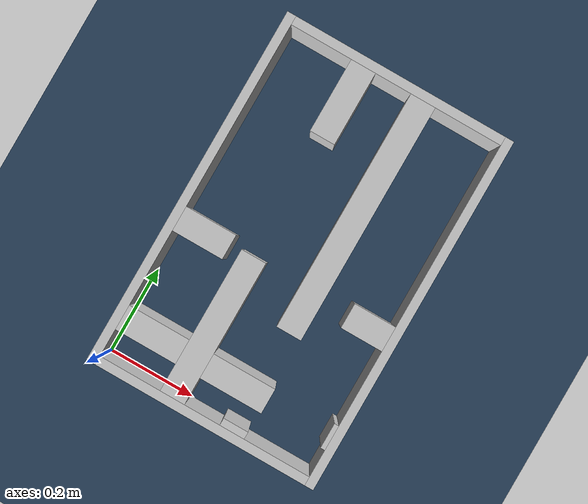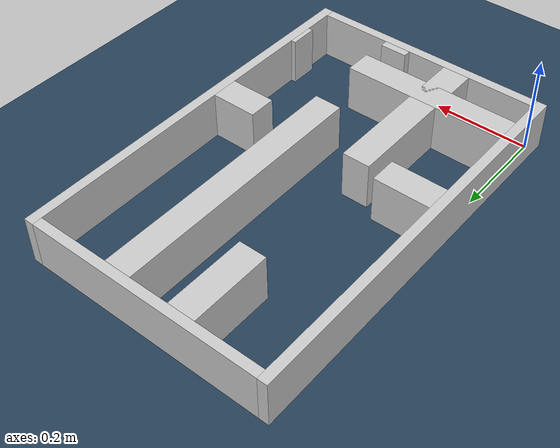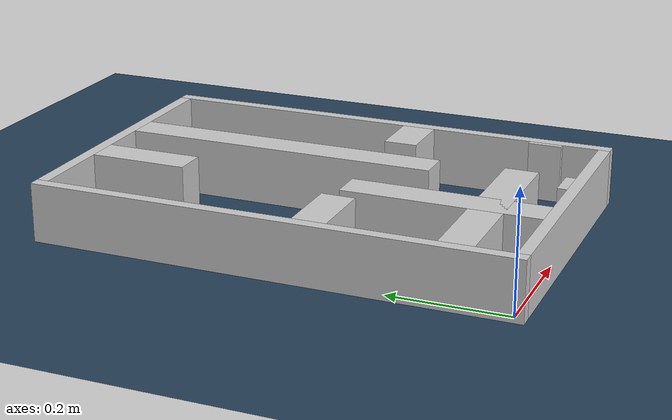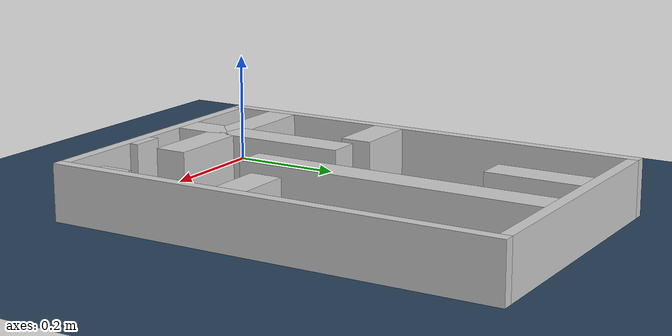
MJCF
<?xml version="1.0" ?>
<mujoco model="generated_real_template">
  <compiler angle="degree"/>
  <option timestep="0.002" integrator="implicitfast" iterations="100" cone="elliptic"/>
  <default>
    <geom density="1"/>
  </default>
  <asset>
    <texture builtin="gradient" height="3072" rgb1="0.3 0.5 0.7" rgb2="0 0 0" type="skybox" width="512"/>
    <texture builtin="checker" height="300" mark="edge" markrgb="0.8 0.8 0.8" name="groundplane" rgb1="0.2 0.3 0.4" rgb2="0.1 0.2 0.3" type="2d" width="300"/>
    <material name="groundplane" reflectance="0.2" texrepeat="5 5" texture="groundplane" texuniform="true"/>
  </asset>
  <worldbody>
    <light dir="0 0 -1" directional="true" pos="0 0 1.5"/>
    <geom name="floor" type="plane" condim="4" friction="0.5 0.005 0.001" material="groundplane" size="0 0 0.05"/>
    <body name="walls">
      <geom name="wall_boundary_left" type="box" condim="4" friction="1.0 0.005 0.0001" rgba="0.8 0.8 0.8 1" pos="-0.010000 0.387500 0.050000" euler="0 0 0.000000" size="0.010000 0.407500 0.050000"/>
      <geom name="wall_boundary_right" type="box" condim="4" friction="1.0 0.005 0.0001" rgba="0.8 0.8 0.8 1" pos="0.500000 0.387500 0.050000" euler="0 0 0.000000" size="0.010000 0.407500 0.050000"/>
      <geom name="wall_boundary_bottom" type="box" condim="4" friction="1.0 0.005 0.0001" rgba="0.8 0.8 0.8 1" pos="0.245000 -0.010000 0.050000" euler="0 0 0.000000" size="0.245000 0.010000 0.050000"/>
      <geom name="wall_boundary_top" type="box" condim="4" friction="1.0 0.005 0.0001" rgba="0.8 0.8 0.8 1" pos="0.245000 0.785000 0.050000" euler="0 0 0.000000" size="0.245000 0.010000 0.050000"/>
      <geom name="wall_inner_1_1" type="box" condim="4" friction="1.0 0.005 0.0001" rgba="0.8 0.8 0.8 1" pos="0.169012 0.165298 0.050000" euler="0 0 90.000000" size="0.165298 0.028500 0.050000"/>
      <geom name="wall_inner_1_2" type="box" condim="4" friction="1.0 0.005 0.0001" rgba="0.8 0.8 0.8 1" pos="0.169012 0.691473 0.050000" euler="0 0 90.000000" size="0.083527 0.028500 0.050000"/>
      <geom name="wall_inner_2_1" type="box" condim="4" friction="1.0 0.005 0.0001" rgba="0.8 0.8 0.8 1" pos="0.308619 0.008191 0.050000" euler="0 0 90.000000" size="0.008191 0.028500 0.050000"/>
      <geom name="wall_inner_2_2" type="box" condim="4" friction="1.0 0.005 0.0001" rgba="0.8 0.8 0.8 1" pos="0.308619 0.502548 0.050000" euler="0 0 90.000000" size="0.272452 0.028500 0.050000"/>
      <geom name="wall_inner_3_1" type="box" condim="4" friction="1.0 0.005 0.0001" rgba="0.8 0.8 0.8 1" pos="0.058339 0.321601 0.050000" euler="0 0 0.000000" size="0.058339 0.028500 0.050000"/>
      <geom name="wall_inner_3_2" type="box" condim="4" friction="1.0 0.005 0.0001" rgba="0.8 0.8 0.8 1" pos="0.442119 0.321601 0.050000" euler="0 0 0.000000" size="0.047881 0.028500 0.050000"/>
      <geom name="wall_inner_4_1" type="box" condim="4" friction="1.0 0.005 0.0001" rgba="0.8 0.8 0.8 1" pos="0.170664 0.090565 0.050000" euler="0 0 0.000000" size="0.170664 0.028500 0.050000"/>
      <geom name="wall_inner_4_2" type="box" condim="4" friction="1.0 0.005 0.0001" rgba="0.8 0.8 0.8 1" pos="0.484999 0.090565 0.050000" euler="0 0 0.000000" size="0.005001 0.028500 0.050000"/>
    </body>
  </worldbody>
</mujoco>
